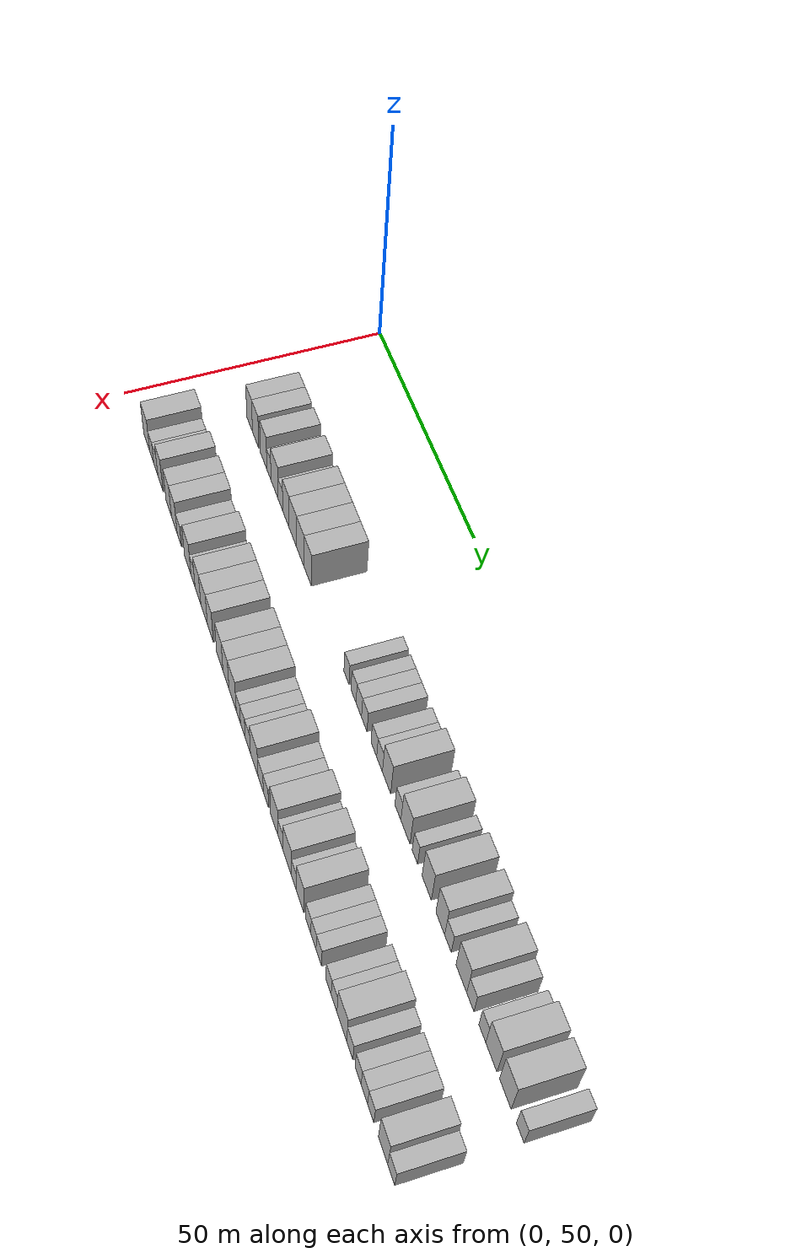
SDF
<sdf version="1.6">
 <world name="default">
  <model name="building_73">
   <static>1</static>
   <pose>25.0000 63.9184 0 0.000000 0.000000 0.000000</pose>
   <link name="link">
    <pose>0 0 4.50 0 0 0</pose>
    <collision name="collision"><geometry><box><size>10.0000 3.6320 9.0000</size></box></geometry></collision>
    <visual name="visual">
     <cast_shadows>0</cast_shadows>
     <geometry><box><size>10.0000 3.6320 9.0000</size></box></geometry>
     <material>
      <script>
       <uri>model://HANNAS_wall/materials/scripts</uri>
       <uri>model://HANNAS_wall/materials/textures</uri>
       <name>vrc/HANNAS_wall</name>
      </script>
     </material>
    </visual>
   </link>
  </model>
  <model name="building_74">
   <static>1</static>
   <pose>25.0000 67.7467 0 0.000000 0.000000 0.000000</pose>
   <link name="link">
    <pose>0 0 4.50 0 0 0</pose>
    <collision name="collision"><geometry><box><size>10.0000 4.0247 9.0000</size></box></geometry></collision>
    <visual name="visual">
     <cast_shadows>0</cast_shadows>
     <geometry><box><size>10.0000 4.0247 9.0000</size></box></geometry>
     <material>
      <script>
       <uri>model://HANNAS_wall/materials/scripts</uri>
       <uri>model://HANNAS_wall/materials/textures</uri>
       <name>vrc/HANNAS_wall</name>
      </script>
     </material>
    </visual>
   </link>
  </model>
  <model name="building_75">
   <static>1</static>
   <pose>25.0000 72.7718 0 0.000000 0.000000 0.000000</pose>
   <link name="link">
    <pose>0 0 4.50 0 0 0</pose>
    <collision name="collision"><geometry><box><size>10.0000 4.0254 9.0000</size></box></geometry></collision>
    <visual name="visual">
     <cast_shadows>0</cast_shadows>
     <geometry><box><size>10.0000 4.0254 9.0000</size></box></geometry>
     <material>
      <script>
       <uri>model://HANNAS_wall/materials/scripts</uri>
       <uri>model://HANNAS_wall/materials/textures</uri>
       <name>vrc/HANNAS_wall</name>
      </script>
     </material>
    </visual>
   </link>
  </model>
  <model name="building_76">
   <static>1</static>
   <pose>25.0000 76.0709 0 0.000000 0.000000 0.000000</pose>
   <link name="link">
    <pose>0 0 3.00 0 0 0</pose>
    <collision name="collision"><geometry><box><size>10.0000 2.5729 6.0000</size></box></geometry></collision>
    <visual name="visual">
     <cast_shadows>0</cast_shadows>
     <geometry><box><size>10.0000 2.5729 6.0000</size></box></geometry>
     <material>
      <script>
       <uri>model://HANNAS_wall/materials/scripts</uri>
       <uri>model://HANNAS_wall/materials/textures</uri>
       <name>vrc/HANNAS_wall</name>
      </script>
     </material>
    </visual>
   </link>
  </model>
  <model name="building_77">
   <static>1</static>
   <pose>25.0000 79.5664 0 0.000000 0.000000 0.000000</pose>
   <link name="link">
    <pose>0 0 4.50 0 0 0</pose>
    <collision name="collision"><geometry><box><size>10.0000 4.4179 9.0000</size></box></geometry></collision>
    <visual name="visual">
     <cast_shadows>0</cast_shadows>
     <geometry><box><size>10.0000 4.4179 9.0000</size></box></geometry>
     <material>
      <script>
       <uri>model://HANNAS_wall/materials/scripts</uri>
       <uri>model://HANNAS_wall/materials/textures</uri>
       <name>vrc/HANNAS_wall</name>
      </script>
     </material>
    </visual>
   </link>
  </model>
  <model name="building_78">
   <static>1</static>
   <pose>25.0000 83.1159 0 0.000000 0.000000 0.000000</pose>
   <link name="link">
    <pose>0 0 3.00 0 0 0</pose>
    <collision name="collision"><geometry><box><size>10.0000 2.6811 6.0000</size></box></geometry></collision>
    <visual name="visual">
     <cast_shadows>0</cast_shadows>
     <geometry><box><size>10.0000 2.6811 6.0000</size></box></geometry>
     <material>
      <script>
       <uri>model://HANNAS_wall/materials/scripts</uri>
       <uri>model://HANNAS_wall/materials/textures</uri>
       <name>vrc/HANNAS_wall</name>
      </script>
     </material>
    </visual>
   </link>
  </model>
  <model name="building_79">
   <static>1</static>
   <pose>25.0000 86.3897 0 0.000000 0.000000 0.000000</pose>
   <link name="link">
    <pose>0 0 4.50 0 0 0</pose>
    <collision name="collision"><geometry><box><size>10.0000 3.8664 9.0000</size></box></geometry></collision>
    <visual name="visual">
     <cast_shadows>0</cast_shadows>
     <geometry><box><size>10.0000 3.8664 9.0000</size></box></geometry>
     <material>
      <script>
       <uri>model://HANNAS_wall/materials/scripts</uri>
       <uri>model://HANNAS_wall/materials/textures</uri>
       <name>vrc/HANNAS_wall</name>
      </script>
     </material>
    </visual>
   </link>
  </model>
  <model name="building_80">
   <static>1</static>
   <pose>25.0000 90.4816 0 0.000000 0.000000 0.000000</pose>
   <link name="link">
    <pose>0 0 4.50 0 0 0</pose>
    <collision name="collision"><geometry><box><size>10.0000 4.3174 9.0000</size></box></geometry></collision>
    <visual name="visual">
     <cast_shadows>0</cast_shadows>
     <geometry><box><size>10.0000 4.3174 9.0000</size></box></geometry>
     <material>
      <script>
       <uri>model://HANNAS_wall/materials/scripts</uri>
       <uri>model://HANNAS_wall/materials/textures</uri>
       <name>vrc/HANNAS_wall</name>
      </script>
     </material>
    </visual>
   </link>
  </model>
  <model name="building_81">
   <static>1</static>
   <pose>25.0000 94.7440 0 0.000000 0.000000 0.000000</pose>
   <link name="link">
    <pose>0 0 4.50 0 0 0</pose>
    <collision name="collision"><geometry><box><size>10.0000 4.2074 9.0000</size></box></geometry></collision>
    <visual name="visual">
     <cast_shadows>0</cast_shadows>
     <geometry><box><size>10.0000 4.2074 9.0000</size></box></geometry>
     <material>
      <script>
       <uri>model://HANNAS_wall/materials/scripts</uri>
       <uri>model://HANNAS_wall/materials/textures</uri>
       <name>vrc/HANNAS_wall</name>
      </script>
     </material>
    </visual>
   </link>
  </model>
  <model name="building_82">
   <static>1</static>
   <pose>25.0000 98.9964 0 0.000000 0.000000 0.000000</pose>
   <link name="link">
    <pose>0 0 4.50 0 0 0</pose>
    <collision name="collision"><geometry><box><size>10.0000 4.2974 9.0000</size></box></geometry></collision>
    <visual name="visual">
     <cast_shadows>0</cast_shadows>
     <geometry><box><size>10.0000 4.2974 9.0000</size></box></geometry>
     <material>
      <script>
       <uri>model://HANNAS_wall/materials/scripts</uri>
       <uri>model://HANNAS_wall/materials/textures</uri>
       <name>vrc/HANNAS_wall</name>
      </script>
     </material>
    </visual>
   </link>
  </model>
  <model name="building_83">
   <static>1</static>
   <pose>25.0000 120.1637 0 0.000000 0.000000 0.000000</pose>
   <link name="link">
    <pose>0 0 3.00 0 0 0</pose>
    <collision name="collision"><geometry><box><size>10.0000 2.6791 6.0000</size></box></geometry></collision>
    <visual name="visual">
     <cast_shadows>0</cast_shadows>
     <geometry><box><size>10.0000 2.6791 6.0000</size></box></geometry>
     <material>
      <script>
       <uri>model://HANNAS_wall/materials/scripts</uri>
       <uri>model://HANNAS_wall/materials/textures</uri>
       <name>vrc/HANNAS_wall</name>
      </script>
     </material>
    </visual>
   </link>
  </model>
  <model name="building_84">
   <static>1</static>
   <pose>25.0000 123.8089 0 0.000000 0.000000 0.000000</pose>
   <link name="link">
    <pose>0 0 3.00 0 0 0</pose>
    <collision name="collision"><geometry><box><size>10.0000 2.6113 6.0000</size></box></geometry></collision>
    <visual name="visual">
     <cast_shadows>0</cast_shadows>
     <geometry><box><size>10.0000 2.6113 6.0000</size></box></geometry>
     <material>
      <script>
       <uri>model://HANNAS_wall/materials/scripts</uri>
       <uri>model://HANNAS_wall/materials/textures</uri>
       <name>vrc/HANNAS_wall</name>
      </script>
     </material>
    </visual>
   </link>
  </model>
  <model name="building_85">
   <static>1</static>
   <pose>25.0000 126.5063 0 0.000000 0.000000 0.000000</pose>
   <link name="link">
    <pose>0 0 3.00 0 0 0</pose>
    <collision name="collision"><geometry><box><size>10.0000 2.7836 6.0000</size></box></geometry></collision>
    <visual name="visual">
     <cast_shadows>0</cast_shadows>
     <geometry><box><size>10.0000 2.7836 6.0000</size></box></geometry>
     <material>
      <script>
       <uri>model://HANNAS_wall/materials/scripts</uri>
       <uri>model://HANNAS_wall/materials/textures</uri>
       <name>vrc/HANNAS_wall</name>
      </script>
     </material>
    </visual>
   </link>
  </model>
  <model name="building_86">
   <static>1</static>
   <pose>25.0000 129.2916 0 0.000000 0.000000 0.000000</pose>
   <link name="link">
    <pose>0 0 3.00 0 0 0</pose>
    <collision name="collision"><geometry><box><size>10.0000 2.7870 6.0000</size></box></geometry></collision>
    <visual name="visual">
     <cast_shadows>0</cast_shadows>
     <geometry><box><size>10.0000 2.7870 6.0000</size></box></geometry>
     <material>
      <script>
       <uri>model://HANNAS_wall/materials/scripts</uri>
       <uri>model://HANNAS_wall/materials/textures</uri>
       <name>vrc/HANNAS_wall</name>
      </script>
     </material>
    </visual>
   </link>
  </model>
  <model name="building_87">
   <static>1</static>
   <pose>25.0000 134.0760 0 0.000000 0.000000 0.000000</pose>
   <link name="link">
    <pose>0 0 3.00 0 0 0</pose>
    <collision name="collision"><geometry><box><size>10.0000 2.7818 6.0000</size></box></geometry></collision>
    <visual name="visual">
     <cast_shadows>0</cast_shadows>
     <geometry><box><size>10.0000 2.7818 6.0000</size></box></geometry>
     <material>
      <script>
       <uri>model://HANNAS_wall/materials/scripts</uri>
       <uri>model://HANNAS_wall/materials/textures</uri>
       <name>vrc/HANNAS_wall</name>
      </script>
     </material>
    </visual>
   </link>
  </model>
  <model name="building_88">
   <static>1</static>
   <pose>25.0000 136.8735 0 0.000000 0.000000 0.000000</pose>
   <link name="link">
    <pose>0 0 3.00 0 0 0</pose>
    <collision name="collision"><geometry><box><size>10.0000 2.8132 6.0000</size></box></geometry></collision>
    <visual name="visual">
     <cast_shadows>0</cast_shadows>
     <geometry><box><size>10.0000 2.8132 6.0000</size></box></geometry>
     <material>
      <script>
       <uri>model://HANNAS_wall/materials/scripts</uri>
       <uri>model://HANNAS_wall/materials/textures</uri>
       <name>vrc/HANNAS_wall</name>
      </script>
     </material>
    </visual>
   </link>
  </model>
  <model name="building_89">
   <static>1</static>
   <pose>25.0000 140.2744 0 0.000000 0.000000 0.000000</pose>
   <link name="link">
    <pose>0 0 4.50 0 0 0</pose>
    <collision name="collision"><geometry><box><size>10.0000 3.9886 9.0000</size></box></geometry></collision>
    <visual name="visual">
     <cast_shadows>0</cast_shadows>
     <geometry><box><size>10.0000 3.9886 9.0000</size></box></geometry>
     <material>
      <script>
       <uri>model://HANNAS_wall/materials/scripts</uri>
       <uri>model://HANNAS_wall/materials/textures</uri>
       <name>vrc/HANNAS_wall</name>
      </script>
     </material>
    </visual>
   </link>
  </model>
  <model name="building_90">
   <static>1</static>
   <pose>25.0000 145.6651 0 0.000000 0.000000 0.000000</pose>
   <link name="link">
    <pose>0 0 3.00 0 0 0</pose>
    <collision name="collision"><geometry><box><size>10.0000 2.7929 6.0000</size></box></geometry></collision>
    <visual name="visual">
     <cast_shadows>0</cast_shadows>
     <geometry><box><size>10.0000 2.7929 6.0000</size></box></geometry>
     <material>
      <script>
       <uri>model://HANNAS_wall/materials/scripts</uri>
       <uri>model://HANNAS_wall/materials/textures</uri>
       <name>vrc/HANNAS_wall</name>
      </script>
     </material>
    </visual>
   </link>
  </model>
  <model name="building_91">
   <static>1</static>
   <pose>25.0000 149.1814 0 0.000000 0.000000 0.000000</pose>
   <link name="link">
    <pose>0 0 4.50 0 0 0</pose>
    <collision name="collision"><geometry><box><size>10.0000 4.2396 9.0000</size></box></geometry></collision>
    <visual name="visual">
     <cast_shadows>0</cast_shadows>
     <geometry><box><size>10.0000 4.2396 9.0000</size></box></geometry>
     <material>
      <script>
       <uri>model://HANNAS_wall/materials/scripts</uri>
       <uri>model://HANNAS_wall/materials/textures</uri>
       <name>vrc/HANNAS_wall</name>
      </script>
     </material>
    </visual>
   </link>
  </model>
  <model name="building_92">
   <static>1</static>
   <pose>25.0000 153.5406 0 0.000000 0.000000 0.000000</pose>
   <link name="link">
    <pose>0 0 3.00 0 0 0</pose>
    <collision name="collision"><geometry><box><size>10.0000 2.4789 6.0000</size></box></geometry></collision>
    <visual name="visual">
     <cast_shadows>0</cast_shadows>
     <geometry><box><size>10.0000 2.4789 6.0000</size></box></geometry>
     <material>
      <script>
       <uri>model://HANNAS_wall/materials/scripts</uri>
       <uri>model://HANNAS_wall/materials/textures</uri>
       <name>vrc/HANNAS_wall</name>
      </script>
     </material>
    </visual>
   </link>
  </model>
  <model name="building_93">
   <static>1</static>
   <pose>25.0000 158.8542 0 0.000000 0.000000 0.000000</pose>
   <link name="link">
    <pose>0 0 4.50 0 0 0</pose>
    <collision name="collision"><geometry><box><size>10.0000 4.1483 9.0000</size></box></geometry></collision>
    <visual name="visual">
     <cast_shadows>0</cast_shadows>
     <geometry><box><size>10.0000 4.1483 9.0000</size></box></geometry>
     <material>
      <script>
       <uri>model://HANNAS_wall/materials/scripts</uri>
       <uri>model://HANNAS_wall/materials/textures</uri>
       <name>vrc/HANNAS_wall</name>
      </script>
     </material>
    </visual>
   </link>
  </model>
  <model name="building_94">
   <static>1</static>
   <pose>25.0000 164.8378 0 0.000000 0.000000 0.000000</pose>
   <link name="link">
    <pose>0 0 4.50 0 0 0</pose>
    <collision name="collision"><geometry><box><size>10.0000 3.8189 9.0000</size></box></geometry></collision>
    <visual name="visual">
     <cast_shadows>0</cast_shadows>
     <geometry><box><size>10.0000 3.8189 9.0000</size></box></geometry>
     <material>
      <script>
       <uri>model://HANNAS_wall/materials/scripts</uri>
       <uri>model://HANNAS_wall/materials/textures</uri>
       <name>vrc/HANNAS_wall</name>
      </script>
     </material>
    </visual>
   </link>
  </model>
  <model name="building_95">
   <static>1</static>
   <pose>25.0000 168.1563 0 0.000000 0.000000 0.000000</pose>
   <link name="link">
    <pose>0 0 3.00 0 0 0</pose>
    <collision name="collision"><geometry><box><size>10.0000 2.8182 6.0000</size></box></geometry></collision>
    <visual name="visual">
     <cast_shadows>0</cast_shadows>
     <geometry><box><size>10.0000 2.8182 6.0000</size></box></geometry>
     <material>
      <script>
       <uri>model://HANNAS_wall/materials/scripts</uri>
       <uri>model://HANNAS_wall/materials/textures</uri>
       <name>vrc/HANNAS_wall</name>
      </script>
     </material>
    </visual>
   </link>
  </model>
  <model name="building_96">
   <static>1</static>
   <pose>25.0000 173.8056 0 0.000000 0.000000 0.000000</pose>
   <link name="link">
    <pose>0 0 4.50 0 0 0</pose>
    <collision name="collision"><geometry><box><size>10.0000 4.4804 9.0000</size></box></geometry></collision>
    <visual name="visual">
     <cast_shadows>0</cast_shadows>
     <geometry><box><size>10.0000 4.4804 9.0000</size></box></geometry>
     <material>
      <script>
       <uri>model://HANNAS_wall/materials/scripts</uri>
       <uri>model://HANNAS_wall/materials/textures</uri>
       <name>vrc/HANNAS_wall</name>
      </script>
     </material>
    </visual>
   </link>
  </model>
  <model name="building_97">
   <static>1</static>
   <pose>25.0000 177.5155 0 0.000000 0.000000 0.000000</pose>
   <link name="link">
    <pose>0 0 3.00 0 0 0</pose>
    <collision name="collision"><geometry><box><size>10.0000 2.9393 6.0000</size></box></geometry></collision>
    <visual name="visual">
     <cast_shadows>0</cast_shadows>
     <geometry><box><size>10.0000 2.9393 6.0000</size></box></geometry>
     <material>
      <script>
       <uri>model://HANNAS_wall/materials/scripts</uri>
       <uri>model://HANNAS_wall/materials/textures</uri>
       <name>vrc/HANNAS_wall</name>
      </script>
     </material>
    </visual>
   </link>
  </model>
  <model name="building_98">
   <static>1</static>
   <pose>25.0000 182.3742 0 0.000000 0.000000 0.000000</pose>
   <link name="link">
    <pose>0 0 3.00 0 0 0</pose>
    <collision name="collision"><geometry><box><size>10.0000 2.7782 6.0000</size></box></geometry></collision>
    <visual name="visual">
     <cast_shadows>0</cast_shadows>
     <geometry><box><size>10.0000 2.7782 6.0000</size></box></geometry>
     <material>
      <script>
       <uri>model://HANNAS_wall/materials/scripts</uri>
       <uri>model://HANNAS_wall/materials/textures</uri>
       <name>vrc/HANNAS_wall</name>
      </script>
     </material>
    </visual>
   </link>
  </model>
  <model name="building_99">
   <static>1</static>
   <pose>25.0000 185.9681 0 0.000000 0.000000 0.000000</pose>
   <link name="link">
    <pose>0 0 4.50 0 0 0</pose>
    <collision name="collision"><geometry><box><size>10.0000 4.4094 9.0000</size></box></geometry></collision>
    <visual name="visual">
     <cast_shadows>0</cast_shadows>
     <geometry><box><size>10.0000 4.4094 9.0000</size></box></geometry>
     <material>
      <script>
       <uri>model://HANNAS_wall/materials/scripts</uri>
       <uri>model://HANNAS_wall/materials/textures</uri>
       <name>vrc/HANNAS_wall</name>
      </script>
     </material>
    </visual>
   </link>
  </model>
  <model name="building_100">
   <static>1</static>
   <pose>25.0000 191.4172 0 0.000000 0.000000 0.000000</pose>
   <link name="link">
    <pose>0 0 4.50 0 0 0</pose>
    <collision name="collision"><geometry><box><size>10.0000 4.4889 9.0000</size></box></geometry></collision>
    <visual name="visual">
     <cast_shadows>0</cast_shadows>
     <geometry><box><size>10.0000 4.4889 9.0000</size></box></geometry>
     <material>
      <script>
       <uri>model://HANNAS_wall/materials/scripts</uri>
       <uri>model://HANNAS_wall/materials/textures</uri>
       <name>vrc/HANNAS_wall</name>
      </script>
     </material>
    </visual>
   </link>
  </model>
  <model name="building_101">
   <static>1</static>
   <pose>25.0000 197.0990 0 0.000000 0.000000 0.000000</pose>
   <link name="link">
    <pose>0 0 3.00 0 0 0</pose>
    <collision name="collision"><geometry><box><size>10.0000 2.8747 6.0000</size></box></geometry></collision>
    <visual name="visual">
     <cast_shadows>0</cast_shadows>
     <geometry><box><size>10.0000 2.8747 6.0000</size></box></geometry>
     <material>
      <script>
       <uri>model://HANNAS_wall/materials/scripts</uri>
       <uri>model://HANNAS_wall/materials/textures</uri>
       <name>vrc/HANNAS_wall</name>
      </script>
     </material>
    </visual>
   </link>
  </model>
  <model name="building_164">
   <static>1</static>
   <pose>44.0000 62.5796 0 0.000000 0.000000 0.000000</pose>
   <link name="link">
    <pose>0 0 4.50 0 0 0</pose>
    <collision name="collision"><geometry><box><size>10.0000 4.4027 9.0000</size></box></geometry></collision>
    <visual name="visual">
     <cast_shadows>0</cast_shadows>
     <geometry><box><size>10.0000 4.4027 9.0000</size></box></geometry>
     <material>
      <script>
       <uri>model://HANNAS_wall/materials/scripts</uri>
       <uri>model://HANNAS_wall/materials/textures</uri>
       <name>vrc/HANNAS_wall</name>
      </script>
     </material>
    </visual>
   </link>
  </model>
  <model name="building_165">
   <static>1</static>
   <pose>44.0000 66.1323 0 0.000000 0.000000 0.000000</pose>
   <link name="link">
    <pose>0 0 3.00 0 0 0</pose>
    <collision name="collision"><geometry><box><size>10.0000 2.7029 6.0000</size></box></geometry></collision>
    <visual name="visual">
     <cast_shadows>0</cast_shadows>
     <geometry><box><size>10.0000 2.7029 6.0000</size></box></geometry>
     <material>
      <script>
       <uri>model://HANNAS_wall/materials/scripts</uri>
       <uri>model://HANNAS_wall/materials/textures</uri>
       <name>vrc/HANNAS_wall</name>
      </script>
     </material>
    </visual>
   </link>
  </model>
  <model name="building_166">
   <static>1</static>
   <pose>44.0000 68.9836 0 0.000000 0.000000 0.000000</pose>
   <link name="link">
    <pose>0 0 3.00 0 0 0</pose>
    <collision name="collision"><geometry><box><size>10.0000 2.9997 6.0000</size></box></geometry></collision>
    <visual name="visual">
     <cast_shadows>0</cast_shadows>
     <geometry><box><size>10.0000 2.9997 6.0000</size></box></geometry>
     <material>
      <script>
       <uri>model://HANNAS_wall/materials/scripts</uri>
       <uri>model://HANNAS_wall/materials/textures</uri>
       <name>vrc/HANNAS_wall</name>
      </script>
     </material>
    </visual>
   </link>
  </model>
  <model name="building_167">
   <static>1</static>
   <pose>44.0000 72.3020 0 0.000000 0.000000 0.000000</pose>
   <link name="link">
    <pose>0 0 4.50 0 0 0</pose>
    <collision name="collision"><geometry><box><size>10.0000 3.6371 9.0000</size></box></geometry></collision>
    <visual name="visual">
     <cast_shadows>0</cast_shadows>
     <geometry><box><size>10.0000 3.6371 9.0000</size></box></geometry>
     <material>
      <script>
       <uri>model://HANNAS_wall/materials/scripts</uri>
       <uri>model://HANNAS_wall/materials/textures</uri>
       <name>vrc/HANNAS_wall</name>
      </script>
     </material>
    </visual>
   </link>
  </model>
  <model name="building_168">
   <static>1</static>
   <pose>44.0000 78.0354 0 0.000000 0.000000 0.000000</pose>
   <link name="link">
    <pose>0 0 4.50 0 0 0</pose>
    <collision name="collision"><geometry><box><size>10.0000 3.8298 9.0000</size></box></geometry></collision>
    <visual name="visual">
     <cast_shadows>0</cast_shadows>
     <geometry><box><size>10.0000 3.8298 9.0000</size></box></geometry>
     <material>
      <script>
       <uri>model://HANNAS_wall/materials/scripts</uri>
       <uri>model://HANNAS_wall/materials/textures</uri>
       <name>vrc/HANNAS_wall</name>
      </script>
     </material>
    </visual>
   </link>
  </model>
  <model name="building_169">
   <static>1</static>
   <pose>44.0000 81.8559 0 0.000000 0.000000 0.000000</pose>
   <link name="link">
    <pose>0 0 4.50 0 0 0</pose>
    <collision name="collision"><geometry><box><size>10.0000 3.8112 9.0000</size></box></geometry></collision>
    <visual name="visual">
     <cast_shadows>0</cast_shadows>
     <geometry><box><size>10.0000 3.8112 9.0000</size></box></geometry>
     <material>
      <script>
       <uri>model://HANNAS_wall/materials/scripts</uri>
       <uri>model://HANNAS_wall/materials/textures</uri>
       <name>vrc/HANNAS_wall</name>
      </script>
     </material>
    </visual>
   </link>
  </model>
  <model name="building_170">
   <static>1</static>
   <pose>44.0000 85.2160 0 0.000000 0.000000 0.000000</pose>
   <link name="link">
    <pose>0 0 3.00 0 0 0</pose>
    <collision name="collision"><geometry><box><size>10.0000 2.9090 6.0000</size></box></geometry></collision>
    <visual name="visual">
     <cast_shadows>0</cast_shadows>
     <geometry><box><size>10.0000 2.9090 6.0000</size></box></geometry>
     <material>
      <script>
       <uri>model://HANNAS_wall/materials/scripts</uri>
       <uri>model://HANNAS_wall/materials/textures</uri>
       <name>vrc/HANNAS_wall</name>
      </script>
     </material>
    </visual>
   </link>
  </model>
  <model name="building_171">
   <static>1</static>
   <pose>44.0000 90.7781 0 0.000000 0.000000 0.000000</pose>
   <link name="link">
    <pose>0 0 4.50 0 0 0</pose>
    <collision name="collision"><geometry><box><size>10.0000 4.2152 9.0000</size></box></geometry></collision>
    <visual name="visual">
     <cast_shadows>0</cast_shadows>
     <geometry><box><size>10.0000 4.2152 9.0000</size></box></geometry>
     <material>
      <script>
       <uri>model://HANNAS_wall/materials/scripts</uri>
       <uri>model://HANNAS_wall/materials/textures</uri>
       <name>vrc/HANNAS_wall</name>
      </script>
     </material>
    </visual>
   </link>
  </model>
  <model name="building_172">
   <static>1</static>
   <pose>44.0000 94.2079 0 0.000000 0.000000 0.000000</pose>
   <link name="link">
    <pose>0 0 3.00 0 0 0</pose>
    <collision name="collision"><geometry><box><size>10.0000 2.6445 6.0000</size></box></geometry></collision>
    <visual name="visual">
     <cast_shadows>0</cast_shadows>
     <geometry><box><size>10.0000 2.6445 6.0000</size></box></geometry>
     <material>
      <script>
       <uri>model://HANNAS_wall/materials/scripts</uri>
       <uri>model://HANNAS_wall/materials/textures</uri>
       <name>vrc/HANNAS_wall</name>
      </script>
     </material>
    </visual>
   </link>
  </model>
  <model name="building_173">
   <static>1</static>
   <pose>44.0000 97.3688 0 0.000000 0.000000 0.000000</pose>
   <link name="link">
    <pose>0 0 4.50 0 0 0</pose>
    <collision name="collision"><geometry><box><size>10.0000 3.6772 9.0000</size></box></geometry></collision>
    <visual name="visual">
     <cast_shadows>0</cast_shadows>
     <geometry><box><size>10.0000 3.6772 9.0000</size></box></geometry>
     <material>
      <script>
       <uri>model://HANNAS_wall/materials/scripts</uri>
       <uri>model://HANNAS_wall/materials/textures</uri>
       <name>vrc/HANNAS_wall</name>
      </script>
     </material>
    </visual>
   </link>
  </model>
  <model name="building_174">
   <static>1</static>
   <pose>44.0000 101.2805 0 0.000000 0.000000 0.000000</pose>
   <link name="link">
    <pose>0 0 4.50 0 0 0</pose>
    <collision name="collision"><geometry><box><size>10.0000 4.1461 9.0000</size></box></geometry></collision>
    <visual name="visual">
     <cast_shadows>0</cast_shadows>
     <geometry><box><size>10.0000 4.1461 9.0000</size></box></geometry>
     <material>
      <script>
       <uri>model://HANNAS_wall/materials/scripts</uri>
       <uri>model://HANNAS_wall/materials/textures</uri>
       <name>vrc/HANNAS_wall</name>
      </script>
     </material>
    </visual>
   </link>
  </model>
  <model name="building_175">
   <static>1</static>
   <pose>44.0000 105.1908 0 0.000000 0.000000 0.000000</pose>
   <link name="link">
    <pose>0 0 4.50 0 0 0</pose>
    <collision name="collision"><geometry><box><size>10.0000 3.6745 9.0000</size></box></geometry></collision>
    <visual name="visual">
     <cast_shadows>0</cast_shadows>
     <geometry><box><size>10.0000 3.6745 9.0000</size></box></geometry>
     <material>
      <script>
       <uri>model://HANNAS_wall/materials/scripts</uri>
       <uri>model://HANNAS_wall/materials/textures</uri>
       <name>vrc/HANNAS_wall</name>
      </script>
     </material>
    </visual>
   </link>
  </model>
  <model name="building_176">
   <static>1</static>
   <pose>44.0000 110.9483 0 0.000000 0.000000 0.000000</pose>
   <link name="link">
    <pose>0 0 4.50 0 0 0</pose>
    <collision name="collision"><geometry><box><size>10.0000 3.8406 9.0000</size></box></geometry></collision>
    <visual name="visual">
     <cast_shadows>0</cast_shadows>
     <geometry><box><size>10.0000 3.8406 9.0000</size></box></geometry>
     <material>
      <script>
       <uri>model://HANNAS_wall/materials/scripts</uri>
       <uri>model://HANNAS_wall/materials/textures</uri>
       <name>vrc/HANNAS_wall</name>
      </script>
     </material>
    </visual>
   </link>
  </model>
  <model name="building_177">
   <static>1</static>
   <pose>44.0000 114.6908 0 0.000000 0.000000 0.000000</pose>
   <link name="link">
    <pose>0 0 4.50 0 0 0</pose>
    <collision name="collision"><geometry><box><size>10.0000 3.6443 9.0000</size></box></geometry></collision>
    <visual name="visual">
     <cast_shadows>0</cast_shadows>
     <geometry><box><size>10.0000 3.6443 9.0000</size></box></geometry>
     <material>
      <script>
       <uri>model://HANNAS_wall/materials/scripts</uri>
       <uri>model://HANNAS_wall/materials/textures</uri>
       <name>vrc/HANNAS_wall</name>
      </script>
     </material>
    </visual>
   </link>
  </model>
  <model name="building_178">
   <static>1</static>
   <pose>44.0000 118.6355 0 0.000000 0.000000 0.000000</pose>
   <link name="link">
    <pose>0 0 4.50 0 0 0</pose>
    <collision name="collision"><geometry><box><size>10.0000 4.2451 9.0000</size></box></geometry></collision>
    <visual name="visual">
     <cast_shadows>0</cast_shadows>
     <geometry><box><size>10.0000 4.2451 9.0000</size></box></geometry>
     <material>
      <script>
       <uri>model://HANNAS_wall/materials/scripts</uri>
       <uri>model://HANNAS_wall/materials/textures</uri>
       <name>vrc/HANNAS_wall</name>
      </script>
     </material>
    </visual>
   </link>
  </model>
  <model name="building_179">
   <static>1</static>
   <pose>44.0000 121.9627 0 0.000000 0.000000 0.000000</pose>
   <link name="link">
    <pose>0 0 3.00 0 0 0</pose>
    <collision name="collision"><geometry><box><size>10.0000 2.4094 6.0000</size></box></geometry></collision>
    <visual name="visual">
     <cast_shadows>0</cast_shadows>
     <geometry><box><size>10.0000 2.4094 6.0000</size></box></geometry>
     <material>
      <script>
       <uri>model://HANNAS_wall/materials/scripts</uri>
       <uri>model://HANNAS_wall/materials/textures</uri>
       <name>vrc/HANNAS_wall</name>
      </script>
     </material>
    </visual>
   </link>
  </model>
  <model name="building_180">
   <static>1</static>
   <pose>44.0000 124.5436 0 0.000000 0.000000 0.000000</pose>
   <link name="link">
    <pose>0 0 3.00 0 0 0</pose>
    <collision name="collision"><geometry><box><size>10.0000 2.7522 6.0000</size></box></geometry></collision>
    <visual name="visual">
     <cast_shadows>0</cast_shadows>
     <geometry><box><size>10.0000 2.7522 6.0000</size></box></geometry>
     <material>
      <script>
       <uri>model://HANNAS_wall/materials/scripts</uri>
       <uri>model://HANNAS_wall/materials/textures</uri>
       <name>vrc/HANNAS_wall</name>
      </script>
     </material>
    </visual>
   </link>
  </model>
  <model name="building_181">
   <static>1</static>
   <pose>44.0000 127.3954 0 0.000000 0.000000 0.000000</pose>
   <link name="link">
    <pose>0 0 3.00 0 0 0</pose>
    <collision name="collision"><geometry><box><size>10.0000 2.9514 6.0000</size></box></geometry></collision>
    <visual name="visual">
     <cast_shadows>0</cast_shadows>
     <geometry><box><size>10.0000 2.9514 6.0000</size></box></geometry>
     <material>
      <script>
       <uri>model://HANNAS_wall/materials/scripts</uri>
       <uri>model://HANNAS_wall/materials/textures</uri>
       <name>vrc/HANNAS_wall</name>
      </script>
     </material>
    </visual>
   </link>
  </model>
  <model name="building_182">
   <static>1</static>
   <pose>44.0000 130.9898 0 0.000000 0.000000 0.000000</pose>
   <link name="link">
    <pose>0 0 4.50 0 0 0</pose>
    <collision name="collision"><geometry><box><size>10.0000 4.2374 9.0000</size></box></geometry></collision>
    <visual name="visual">
     <cast_shadows>0</cast_shadows>
     <geometry><box><size>10.0000 4.2374 9.0000</size></box></geometry>
     <material>
      <script>
       <uri>model://HANNAS_wall/materials/scripts</uri>
       <uri>model://HANNAS_wall/materials/textures</uri>
       <name>vrc/HANNAS_wall</name>
      </script>
     </material>
    </visual>
   </link>
  </model>
  <model name="building_183">
   <static>1</static>
   <pose>44.0000 134.5785 0 0.000000 0.000000 0.000000</pose>
   <link name="link">
    <pose>0 0 3.00 0 0 0</pose>
    <collision name="collision"><geometry><box><size>10.0000 2.9400 6.0000</size></box></geometry></collision>
    <visual name="visual">
     <cast_shadows>0</cast_shadows>
     <geometry><box><size>10.0000 2.9400 6.0000</size></box></geometry>
     <material>
      <script>
       <uri>model://HANNAS_wall/materials/scripts</uri>
       <uri>model://HANNAS_wall/materials/textures</uri>
       <name>vrc/HANNAS_wall</name>
      </script>
     </material>
    </visual>
   </link>
  </model>
  <model name="building_184">
   <static>1</static>
   <pose>44.0000 137.4479 0 0.000000 0.000000 0.000000</pose>
   <link name="link">
    <pose>0 0 3.00 0 0 0</pose>
    <collision name="collision"><geometry><box><size>10.0000 2.7988 6.0000</size></box></geometry></collision>
    <visual name="visual">
     <cast_shadows>0</cast_shadows>
     <geometry><box><size>10.0000 2.7988 6.0000</size></box></geometry>
     <material>
      <script>
       <uri>model://HANNAS_wall/materials/scripts</uri>
       <uri>model://HANNAS_wall/materials/textures</uri>
       <name>vrc/HANNAS_wall</name>
      </script>
     </material>
    </visual>
   </link>
  </model>
  <model name="building_185">
   <static>1</static>
   <pose>44.0000 141.9291 0 0.000000 0.000000 0.000000</pose>
   <link name="link">
    <pose>0 0 4.50 0 0 0</pose>
    <collision name="collision"><geometry><box><size>10.0000 4.1636 9.0000</size></box></geometry></collision>
    <visual name="visual">
     <cast_shadows>0</cast_shadows>
     <geometry><box><size>10.0000 4.1636 9.0000</size></box></geometry>
     <material>
      <script>
       <uri>model://HANNAS_wall/materials/scripts</uri>
       <uri>model://HANNAS_wall/materials/textures</uri>
       <name>vrc/HANNAS_wall</name>
      </script>
     </material>
    </visual>
   </link>
  </model>
  <model name="building_186">
   <static>1</static>
   <pose>44.0000 145.3002 0 0.000000 0.000000 0.000000</pose>
   <link name="link">
    <pose>0 0 3.00 0 0 0</pose>
    <collision name="collision"><geometry><box><size>10.0000 2.5787 6.0000</size></box></geometry></collision>
    <visual name="visual">
     <cast_shadows>0</cast_shadows>
     <geometry><box><size>10.0000 2.5787 6.0000</size></box></geometry>
     <material>
      <script>
       <uri>model://HANNAS_wall/materials/scripts</uri>
       <uri>model://HANNAS_wall/materials/textures</uri>
       <name>vrc/HANNAS_wall</name>
      </script>
     </material>
    </visual>
   </link>
  </model>
  <model name="building_187">
   <static>1</static>
   <pose>44.0000 148.7649 0 0.000000 0.000000 0.000000</pose>
   <link name="link">
    <pose>0 0 4.50 0 0 0</pose>
    <collision name="collision"><geometry><box><size>10.0000 4.3508 9.0000</size></box></geometry></collision>
    <visual name="visual">
     <cast_shadows>0</cast_shadows>
     <geometry><box><size>10.0000 4.3508 9.0000</size></box></geometry>
     <material>
      <script>
       <uri>model://HANNAS_wall/materials/scripts</uri>
       <uri>model://HANNAS_wall/materials/textures</uri>
       <name>vrc/HANNAS_wall</name>
      </script>
     </material>
    </visual>
   </link>
  </model>
  <model name="building_188">
   <static>1</static>
   <pose>44.0000 152.1620 0 0.000000 0.000000 0.000000</pose>
   <link name="link">
    <pose>0 0 3.00 0 0 0</pose>
    <collision name="collision"><geometry><box><size>10.0000 2.4435 6.0000</size></box></geometry></collision>
    <visual name="visual">
     <cast_shadows>0</cast_shadows>
     <geometry><box><size>10.0000 2.4435 6.0000</size></box></geometry>
     <material>
      <script>
       <uri>model://HANNAS_wall/materials/scripts</uri>
       <uri>model://HANNAS_wall/materials/textures</uri>
       <name>vrc/HANNAS_wall</name>
      </script>
     </material>
    </visual>
   </link>
  </model>
  <model name="building_189">
   <static>1</static>
   <pose>44.0000 155.2591 0 0.000000 0.000000 0.000000</pose>
   <link name="link">
    <pose>0 0 4.50 0 0 0</pose>
    <collision name="collision"><geometry><box><size>10.0000 3.7508 9.0000</size></box></geometry></collision>
    <visual name="visual">
     <cast_shadows>0</cast_shadows>
     <geometry><box><size>10.0000 3.7508 9.0000</size></box></geometry>
     <material>
      <script>
       <uri>model://HANNAS_wall/materials/scripts</uri>
       <uri>model://HANNAS_wall/materials/textures</uri>
       <name>vrc/HANNAS_wall</name>
      </script>
     </material>
    </visual>
   </link>
  </model>
  <model name="building_190">
   <static>1</static>
   <pose>44.0000 159.4261 0 0.000000 0.000000 0.000000</pose>
   <link name="link">
    <pose>0 0 3.00 0 0 0</pose>
    <collision name="collision"><geometry><box><size>10.0000 2.5831 6.0000</size></box></geometry></collision>
    <visual name="visual">
     <cast_shadows>0</cast_shadows>
     <geometry><box><size>10.0000 2.5831 6.0000</size></box></geometry>
     <material>
      <script>
       <uri>model://HANNAS_wall/materials/scripts</uri>
       <uri>model://HANNAS_wall/materials/textures</uri>
       <name>vrc/HANNAS_wall</name>
      </script>
     </material>
    </visual>
   </link>
  </model>
  <model name="building_191">
   <static>1</static>
   <pose>44.0000 161.9841 0 0.000000 0.000000 0.000000</pose>
   <link name="link">
    <pose>0 0 3.00 0 0 0</pose>
    <collision name="collision"><geometry><box><size>10.0000 2.5329 6.0000</size></box></geometry></collision>
    <visual name="visual">
     <cast_shadows>0</cast_shadows>
     <geometry><box><size>10.0000 2.5329 6.0000</size></box></geometry>
     <material>
      <script>
       <uri>model://HANNAS_wall/materials/scripts</uri>
       <uri>model://HANNAS_wall/materials/textures</uri>
       <name>vrc/HANNAS_wall</name>
      </script>
     </material>
    </visual>
   </link>
  </model>
  <model name="building_192">
   <static>1</static>
   <pose>44.0000 164.5853 0 0.000000 0.000000 0.000000</pose>
   <link name="link">
    <pose>0 0 3.00 0 0 0</pose>
    <collision name="collision"><geometry><box><size>10.0000 2.6694 6.0000</size></box></geometry></collision>
    <visual name="visual">
     <cast_shadows>0</cast_shadows>
     <geometry><box><size>10.0000 2.6694 6.0000</size></box></geometry>
     <material>
      <script>
       <uri>model://HANNAS_wall/materials/scripts</uri>
       <uri>model://HANNAS_wall/materials/textures</uri>
       <name>vrc/HANNAS_wall</name>
      </script>
     </material>
    </visual>
   </link>
  </model>
  <model name="building_193">
   <static>1</static>
   <pose>44.0000 169.2027 0 0.000000 0.000000 0.000000</pose>
   <link name="link">
    <pose>0 0 3.00 0 0 0</pose>
    <collision name="collision"><geometry><box><size>10.0000 2.5656 6.0000</size></box></geometry></collision>
    <visual name="visual">
     <cast_shadows>0</cast_shadows>
     <geometry><box><size>10.0000 2.5656 6.0000</size></box></geometry>
     <material>
      <script>
       <uri>model://HANNAS_wall/materials/scripts</uri>
       <uri>model://HANNAS_wall/materials/textures</uri>
       <name>vrc/HANNAS_wall</name>
      </script>
     </material>
    </visual>
   </link>
  </model>
  <model name="building_194">
   <static>1</static>
   <pose>44.0000 171.8501 0 0.000000 0.000000 0.000000</pose>
   <link name="link">
    <pose>0 0 3.00 0 0 0</pose>
    <collision name="collision"><geometry><box><size>10.0000 2.7291 6.0000</size></box></geometry></collision>
    <visual name="visual">
     <cast_shadows>0</cast_shadows>
     <geometry><box><size>10.0000 2.7291 6.0000</size></box></geometry>
     <material>
      <script>
       <uri>model://HANNAS_wall/materials/scripts</uri>
       <uri>model://HANNAS_wall/materials/textures</uri>
       <name>vrc/HANNAS_wall</name>
      </script>
     </material>
    </visual>
   </link>
  </model>
  <model name="building_195">
   <static>1</static>
   <pose>44.0000 175.4233 0 0.000000 0.000000 0.000000</pose>
   <link name="link">
    <pose>0 0 4.50 0 0 0</pose>
    <collision name="collision"><geometry><box><size>10.0000 4.4174 9.0000</size></box></geometry></collision>
    <visual name="visual">
     <cast_shadows>0</cast_shadows>
     <geometry><box><size>10.0000 4.4174 9.0000</size></box></geometry>
     <material>
      <script>
       <uri>model://HANNAS_wall/materials/scripts</uri>
       <uri>model://HANNAS_wall/materials/textures</uri>
       <name>vrc/HANNAS_wall</name>
      </script>
     </material>
    </visual>
   </link>
  </model>
  <model name="building_196">
   <static>1</static>
   <pose>44.0000 179.0500 0 0.000000 0.000000 0.000000</pose>
   <link name="link">
    <pose>0 0 3.00 0 0 0</pose>
    <collision name="collision"><geometry><box><size>10.0000 2.8359 6.0000</size></box></geometry></collision>
    <visual name="visual">
     <cast_shadows>0</cast_shadows>
     <geometry><box><size>10.0000 2.8359 6.0000</size></box></geometry>
     <material>
      <script>
       <uri>model://HANNAS_wall/materials/scripts</uri>
       <uri>model://HANNAS_wall/materials/textures</uri>
       <name>vrc/HANNAS_wall</name>
      </script>
     </material>
    </visual>
   </link>
  </model>
  <model name="building_197">
   <static>1</static>
   <pose>44.0000 182.8082 0 0.000000 0.000000 0.000000</pose>
   <link name="link">
    <pose>0 0 3.00 0 0 0</pose>
    <collision name="collision"><geometry><box><size>10.0000 2.6806 6.0000</size></box></geometry></collision>
    <visual name="visual">
     <cast_shadows>0</cast_shadows>
     <geometry><box><size>10.0000 2.6806 6.0000</size></box></geometry>
     <material>
      <script>
       <uri>model://HANNAS_wall/materials/scripts</uri>
       <uri>model://HANNAS_wall/materials/textures</uri>
       <name>vrc/HANNAS_wall</name>
      </script>
     </material>
    </visual>
   </link>
  </model>
  <model name="building_198">
   <static>1</static>
   <pose>44.0000 185.5782 0 0.000000 0.000000 0.000000</pose>
   <link name="link">
    <pose>0 0 3.00 0 0 0</pose>
    <collision name="collision"><geometry><box><size>10.0000 2.8594 6.0000</size></box></geometry></collision>
    <visual name="visual">
     <cast_shadows>0</cast_shadows>
     <geometry><box><size>10.0000 2.8594 6.0000</size></box></geometry>
     <material>
      <script>
       <uri>model://HANNAS_wall/materials/scripts</uri>
       <uri>model://HANNAS_wall/materials/textures</uri>
       <name>vrc/HANNAS_wall</name>
      </script>
     </material>
    </visual>
   </link>
  </model>
  <model name="building_199">
   <static>1</static>
   <pose>44.0000 188.3554 0 0.000000 0.000000 0.000000</pose>
   <link name="link">
    <pose>0 0 3.00 0 0 0</pose>
    <collision name="collision"><geometry><box><size>10.0000 2.6951 6.0000</size></box></geometry></collision>
    <visual name="visual">
     <cast_shadows>0</cast_shadows>
     <geometry><box><size>10.0000 2.6951 6.0000</size></box></geometry>
     <material>
      <script>
       <uri>model://HANNAS_wall/materials/scripts</uri>
       <uri>model://HANNAS_wall/materials/textures</uri>
       <name>vrc/HANNAS_wall</name>
      </script>
     </material>
    </visual>
   </link>
  </model>
  <model name="building_200">
   <static>1</static>
   <pose>44.0000 193.6678 0 0.000000 0.000000 0.000000</pose>
   <link name="link">
    <pose>0 0 4.50 0 0 0</pose>
    <collision name="collision"><geometry><box><size>10.0000 3.9296 9.0000</size></box></geometry></collision>
    <visual name="visual">
     <cast_shadows>0</cast_shadows>
     <geometry><box><size>10.0000 3.9296 9.0000</size></box></geometry>
     <material>
      <script>
       <uri>model://HANNAS_wall/materials/scripts</uri>
       <uri>model://HANNAS_wall/materials/textures</uri>
       <name>vrc/HANNAS_wall</name>
      </script>
     </material>
    </visual>
   </link>
  </model>
  <model name="building_201">
   <static>1</static>
   <pose>44.0000 197.0964 0 0.000000 0.000000 0.000000</pose>
   <link name="link">
    <pose>0 0 3.00 0 0 0</pose>
    <collision name="collision"><geometry><box><size>10.0000 2.9277 6.0000</size></box></geometry></collision>
    <visual name="visual">
     <cast_shadows>0</cast_shadows>
     <geometry><box><size>10.0000 2.9277 6.0000</size></box></geometry>
     <material>
      <script>
       <uri>model://HANNAS_wall/materials/scripts</uri>
       <uri>model://HANNAS_wall/materials/textures</uri>
       <name>vrc/HANNAS_wall</name>
      </script>
     </material>
    </visual>
   </link>
  </model>
 </world>
</sdf>
